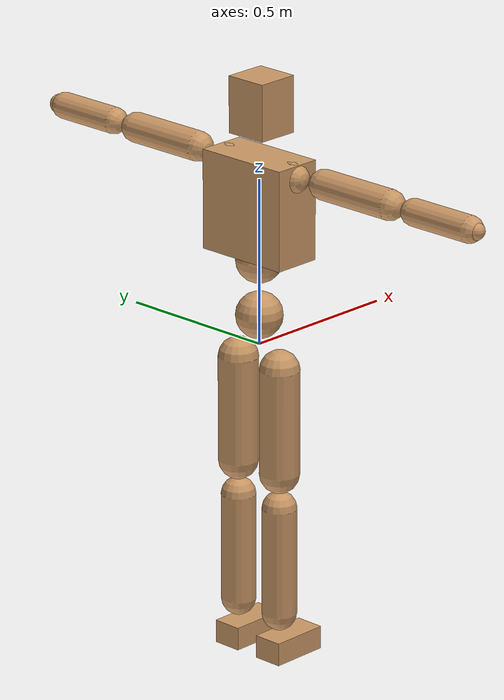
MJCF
<mujoco model="kw5">
  <compiler angle="degree" inertiafromgeom="true"/>

  <option timestep="0.00555"/>
  <default>
    <joint armature="1" damping="1" limited="true"/>
    <geom conaffinity="1" condim="1" contype="1" margin="0.001" rgba="0.8 0.6 .4 1"/>
    <motor ctrllimited="true" ctrlrange="-1.0 1.0"/>

    <default class="body">
      <geom type="capsule" condim="1" friction="1.0 0.05 0.05" solimp=".9 .99 .003" solref=".015 1"/>
      <joint type="hinge" damping="0.1" stiffness="5" armature=".007" limited="true" solimplimit="0 .99 .01" actuatorfrcrange="-3.4028235e38 3.4028235e38"/>
      <!-- actuatorfrcrange is for IsaacSim, otherwise, maxForce become 0-->
      <site size=".04" group="3"/>
      <default class="force-torque">
        <site type="box" size=".01 .01 .02" rgba="1 0 0 1" />
      </default>
      <default class="touch">
        <site type="capsule" rgba="0 0 1 .3"/>
      </default>
    </default>

  </default>

  <worldbody>

    <body name="Hips" pos=" 0 0 0 " childclass="body">
      <freejoint name="Hips"/>
      <site name="Hips" class="force-torque"/>
      <geom name="pelvis" type="sphere" pos="0 0 0.09" size="0.07" density="2226"/>
      <geom name="upper_waist" type="sphere" pos="0 0 0.26" size="0.07" density="2226"/>
      <site name="pelvis" class="touch" type="sphere" pos="0 0 0.9" size="0.071"/>
      <site name="upper_waist" class="touch" type="sphere" pos="0 0 0.26" size="0.071"/>

      <body name="LeftHip" pos=" -0.001963 0.082442 0.002344 ">
        <site name="LeftHip" class="force-torque"/>
        <joint name="LeftHip_x" axis=" 1 0 0 " pos="0 0 0" range="-15 60" stiffness="300" damping="30" type="hinge" armature="0.02"/>
        <joint name="LeftHip_y" axis=" 0 1 0 " pos="0 0 0" range="-140 60" stiffness="300" damping="30" type="hinge" armature="0.02"/>
        <joint name="LeftHip_z" axis=" 0 0 1 " pos="0 0 0" range="-35 60" stiffness="300" damping="30" type="hinge" armature="0.02"/>
        <geom name="left_thigh" fromto="0 0 -0.06 0 0 -0.38" size=".06" density="1269"/>
        <site name="left_thigh" class="touch" pos="0 0 -0.22" size="0.061 0.301" zaxis="0 0 -1"/>

        <body name="LeftKnee" pos=" 0 0 -0.444242 ">
          <site name="LeftKnee" class="force-torque" pos="0 0 .02"/>
          <joint name="LeftKnee" axis=" 0 1 0 " pos="0 0 0" range="0 160" stiffness="300" damping="30" type="hinge" armature="0.02"/>
          <geom name="left_shin" fromto="0 0 -0.045 0 0 -0.375" size=".052" density="1014"/>
          <site name="left_shin" class="touch" pos="0 0 -0.21" size="0.053 0.165" zaxis="0 0 -1"/>
          <body name="LeftAnkle" pos=" 0 0 -0.431735 ">
            <site name="LeftAnkle" class="force-torque"/>
            <joint name="LeftAnkle_x" axis=" 1 0 0 " pos="0 0 0" range="-30 30" stiffness="200" damping="20" type="hinge" armature="0.01"/>
            <joint name="LeftAnkle_y" axis=" 0 1 0 " pos="0 0 0" range="-55 55" stiffness="200" damping="20" type="hinge" armature="0.01"/>
            <joint name="LeftAnkle_z" axis=" 0 0 1 " pos="0 0 0" range="-40 40" stiffness="200" damping="20" type="hinge" armature="0.01"/>
            <geom name="left_foot" type="box" pos="0.04 0.0 -0.05" size="0.090 0.045 0.035" density="1141"/>
            <site name="left_foot" class="touch" type="box" pos="0.04 0.0 -0.05" size="0.091 0.046 0.036"/>

            <body name="LeftToe" pos=" 0.125 0 -0.0835 ">
              <geom name="left_toe" type="sphere" size=".0010"/>
              <site name="left_toe" class="touch" type="sphere" size=".0011"/>
            </body>
          </body>
        </body>
      </body>

      <body name="RightHip" pos=" -0.001963 -0.082442 0.002344 ">
        <site name="RightHip" class="force-torque"/>
        <joint name="RightHip_x" axis=" 1 0 0 " pos="0 0 0" range="-60 15" stiffness="300" damping="30" type="hinge" armature="0.02"/>
        <joint name="RightHip_y" axis=" 0 1 0 " pos="0 0 0" range="-140 60" stiffness="300" damping="30" type="hinge" armature="0.02"/>
        <joint name="RightHip_z" axis=" 0 0 1 " pos="0 0 0" range="-60 35" stiffness="300" damping="30" type="hinge" armature="0.02"/>
        <geom name="right_thigh" fromto="0 0 -0.06 0 0 -0.38" size="0.06" density="1269"/>
        <site name="right_thigh" class="touch" pos="0 0 -0.22" size="0.061 0.301" zaxis="0 0 -1"/>

        <body name="RightKnee" pos=" 0 0 -0.444242 ">
          <site name="RightKnee" class="force-torque" pos="0 0 0"/>
          <joint name="RightKnee" axis=" 0 1 0 " pos="0 0 0" range="0 160" stiffness="300" damping="30" type="hinge" armature="0.02"/>
          <geom name="right_shin" fromto="0 0 -0.045 0 0 -0.375" size=".052" density="1014"/>
          <site name="right_shin" class="touch" pos="0 0 -0.21" size="0.053 0.165" zaxis="0 0 -1"/>

          <body name="RightAnkle" pos=" 0 0 -0.431735 ">
            <site name="RightAnkle" class="force-torque"/>
            <joint name="RightAnkle_x" axis=" 1 0 0 " pos="0 0 0" range="-30 30" stiffness="200" damping="20" type="hinge" armature="0.01"/>
            <joint name="RightAnkle_y" axis=" 0 1 0 " pos="0 0 0" range="-55 55" stiffness="200" damping="20" type="hinge" armature="0.01"/>
            <joint name="RightAnkle_z" axis=" 0 0 1 " pos="0 0 0" range="-40 40" stiffness="200" damping="20" type="hinge" armature="0.01"/>
            <geom name="right_foot" type="box" pos="0.04 0.0 -0.05" size="0.090 0.045 0.035" density="1141"/>
            <site name="right_foot" class="touch" type="box" pos="0.04 0.0 -0.05" size="0.091 0.046 0.036"/>

            <body name="RightToe" pos=" 0.125 0 -0.0835 ">
              <geom name="right_toe" type="sphere" size=".0010"/>
              <site name="right_toe" class="touch" type="sphere" size=".0011"/>
            </body>
          </body>
        </body>
      </body>

      <body name="Chest" pos=" -0.005414 -0.003774 0.297994 ">
        <light name="top" pos="0 0 2" mode="trackcom"/>
        <camera name="back" pos="-3 0 1" xyaxes="0 -1 0 1 0 2" mode="trackcom"/>
        <camera name="side" pos="0 -3 1" xyaxes="1 0 0 0 1 2" mode="trackcom"/>
        <joint name="Chest_x" axis=" 1 0 0 " pos="0 0 0" range="-60 60" stiffness="600" damping="60" type="hinge" armature="0.02"/>
        <joint name="Chest_y" axis=" 0 1 0 " pos="0 0 0" range="-60 90" stiffness="600" damping="60" type="hinge" armature="0.02"/>
        <joint name="Chest_z" axis=" 0 0 1 " pos="0 0 0" range="-50 50" stiffness="600" damping="60" type="hinge" armature="0.02"/>
        <geom name="torso" type="box" size=" 0.075 0.15 0.15 " pos=" 0 0 0.13 " density="1794"/>
        <site name="torso" class="touch" type="box" pos="0 0 0.13" size="0.076 0.151 0.151 "/>

        <geom name="right_clavicle" fromto="0.007191 -0.0457775 0.2287955 0.007191 -0.13 0.2376182" size=".045" density="1100"/>
        <geom name="left_clavicle" fromto="0.007191 0.0457775 0.2287955 0.007191 0.13 0.2376182" size=".045" density="1100"/>

        <body name="LeftShoulder" pos=" 0.007191 0.198 0.245686 ">
          <joint name="LeftShoulder_x" axis=" 1 0 0 " pos="0 0 0" range="-160 90" stiffness="200" damping="20" type="hinge" armature="0.02"/>
          <joint name="LeftShoulder_y" axis=" 0 1 0 " pos="0 0 0" range="-90 90" stiffness="200" damping="20" type="hinge" armature="0.02"/>
          <joint name="LeftShoulder_z" axis=" 0 0 1 " pos="0 0 0" range="-160 70" stiffness="200" damping="20" type="hinge" armature="0.02"/>
          <geom name="left_upper_arm" fromto="0 0.05 0 0 0.30 0" size="0.045" density="982"/>
          <site name="left_upper_arm" class="touch" pos="0 0.15 0" size="0.046 0.1" zaxis="0 0 1"/>
          <body name="LeftElbow" pos=" 0 0.338862 0 ">
            <joint name="LeftElbow" axis=" 0 0 1 " pos="0 0 0" range="-160 0" stiffness="150" damping="15" type="hinge" armature="0.01"/>
            <geom name="left_lower_arm" fromto="0 0.0525 0 0 0.2575 0" size="0.04" density="1056"/>
            <site name="left_lower_arm" class="touch" pos="0 0.155 0" size="0.041 0.0685" zaxis="0 0 1"/>

            <body name="LeftWrist" pos=" 0 0.280143 0 ">
              <geom name="left_wrist" type="sphere" size=".030" density="1865"/>
              <site name="left_wrist" class="touch" type="sphere" size=".027"/>
            </body>
          </body>
        </body>

        <body name="RightShoulder" pos=" 0.007191 -0.198 0.245686 ">
          <joint name="RightShoulder_x" axis=" 1 0 0 " pos="0 0 0" range="-90 160" stiffness="200" damping="20" type="hinge" armature="0.02"/>
          <joint name="RightShoulder_y" axis=" 0 1 0 " pos="0 0 0" range="-90 90" stiffness="200" damping="20" type="hinge" armature="0.02"/>
          <joint name="RightShoulder_z" axis=" 0 0 1 " pos="0 0 0" range="-70 160" stiffness="200" damping="20" type="hinge" armature="0.02"/>
          <geom name="right_upper_arm" fromto="0 -0.05 0 0 -0.30 0" size=".045" density="982"/>
          <site name="right_upper_arm" class="touch" pos="0 -0.175 0" size="0.046 0.1" zaxis="0 0 1"/>
          <body name="RightElbow" pos=" 0 -0.338862 0 ">
            <joint name="RightElbow" axis=" 0 0 1 " pos="0 0 0" range="0 160" stiffness="150" damping="15" type="hinge" armature="0.01"/>
            <geom name="right_lower_arm" fromto="0 -0.0525 0 0 -0.2575 0" size="0.04" density="1056"/>
            <site name="right_lower_arm" class="touch" pos="0 -0.155 0" size="0.041 0.0685" zaxis="0 0 1"/>

            <body name="RightWrist" pos=" 0 -0.280143 0 ">
              <geom name="right_wrist" type="sphere" size=".026" density="1865"/>
              <site name="right_wrist" class="touch" type="sphere" size=".027"/>
            </body>
          </body>
        </body>

        <body name="Neck" pos=" 0.010085 0.00045 0.327652 ">
          <joint name="Neck_x" axis=" 1 0 0 " pos="0 0 0" range="-50 50" stiffness="50" damping="5" type="hinge" armature="0.01"/>
          <joint name="Neck_y" axis=" 0 1 0 " pos="0 0 0" range="-40 60" stiffness="50" damping="5" type="hinge" armature="0.01"/>
          <joint name="Neck_z" axis=" 0 0 1 " pos="0 0 0" range="-45 45" stiffness="50" damping="5" type="hinge" armature="0.01"/>
          <geom name="head" type="box" size=" 0.065 0.065 0.085 " pos=" 0 0 0.1 " density="1081"/>
          <site name="head" class="touch" pos="0 0 0.1" type="box" size=" 0.067 0.067 0.087 "/>
          <camera name="egocentric" pos=".103 0 0.12" xyaxes="0 -1 0 .1 0 1" fovy="80"/>
        </body>
      </body>
    </body>
  </worldbody>

  <actuator>
    <motor name="LeftHip_x" joint="LeftHip_x" gear="135"/>
    <motor name="LeftHip_y" joint="LeftHip_y" gear="135"/>
    <motor name="LeftHip_z" joint="LeftHip_z" gear="135"/>
    <motor name="LeftKnee" joint="LeftKnee" gear="100"/>
    <motor name="LeftAnkle_x" joint="LeftAnkle_x" gear="50.0"/>
    <motor name="LeftAnkle_y" joint="LeftAnkle_y" gear="50.0"/>
    <motor name="LeftAnkle_z" joint="LeftAnkle_z" gear="50.0"/>
    <motor name="RightHip_x" joint="RightHip_x" gear="135"/>
    <motor name="RightHip_y" joint="RightHip_y" gear="135"/>
    <motor name="RightHip_z" joint="RightHip_z" gear="135"/>
    <motor name="RightKnee" joint="RightKnee" gear="100"/>
    <motor name="RightAnkle_x" joint="RightAnkle_x" gear="50.0"/>
    <motor name="RightAnkle_y" joint="RightAnkle_y" gear="50.0"/>
    <motor name="RightAnkle_z" joint="RightAnkle_z" gear="50.0"/>
    <motor name="Chest_x" joint="Chest_x" gear="135"/>
    <motor name="Chest_y" joint="Chest_y" gear="135"/>
    <motor name="Chest_z" joint="Chest_z" gear="135"/>
    <motor name="LeftShoulder_x" joint="LeftShoulder_x" gear="70"/>
    <motor name="LeftShoulder_y" joint="LeftShoulder_y" gear="70"/>
    <motor name="LeftShoulder_z" joint="LeftShoulder_z" gear="70"/>
    <motor name="LeftElbow" joint="LeftElbow" gear="60"/>
    <motor name="RightShoulder_x" joint="RightShoulder_x" gear="70"/>
    <motor name="RightShoulder_y" joint="RightShoulder_y" gear="70"/>
    <motor name="RightShoulder_z" joint="RightShoulder_z" gear="70"/>
    <motor name="RightElbow" joint="RightElbow" gear="60"/>
    <motor name="Neck_x" joint="Neck_x" gear="20"/>
    <motor name="Neck_y" joint="Neck_y" gear="20"/>
    <motor name="Neck_z" joint="Neck_z" gear="20"/>
  </actuator>

  <sensor>
    <subtreelinvel name="pelvis_subtreelinvel" body="Hips"/>
    <accelerometer name="root_accel" site="Hips"/>
    <velocimeter name="root_vel" site="Hips"/>
    <gyro name="root_gyro" site="Hips"/>

    <force name="LeftAnkle_force" site="LeftAnkle"/>
    <force name="RightAnkle_force" site="RightAnkle"/>
    <force name="LeftKnee_force" site="LeftKnee"/>
    <force name="RightKnee_force" site="RightKnee"/>
    <force name="LeftHip_force" site="LeftHip"/>
    <force name="RightHip_force" site="RightHip"/>

    <torque name="LeftAnkle_torque" site="LeftAnkle"/>
    <torque name="RightAnkle_torque" site="RightAnkle"/>
    <torque name="LeftKnee_torque" site="LeftKnee"/>
    <torque name="RightKnee_torque" site="RightKnee"/>
    <torque name="LeftHip_torque" site="LeftHip"/>
    <torque name="RightHip_torque" site="RightHip"/>

    <touch name="pelvis_touch" site="pelvis"/>
    <touch name="upper_waist_touch" site="upper_waist"/>
    <touch name="torso_touch" site="torso"/>
    <touch name="head_touch" site="head"/>
    <touch name="right_upper_arm_touch" site="right_upper_arm"/>
    <touch name="right_lower_arm_touch" site="right_lower_arm"/>
    <touch name="left_upper_arm_touch" site="left_upper_arm"/>
    <touch name="left_lower_arm_touch" site="left_lower_arm"/>
    <touch name="right_thigh_touch" site="right_thigh"/>
    <touch name="right_shin_touch" site="right_shin"/>
    <touch name="right_foot_touch" site="right_foot"/>
    <touch name="left_thigh_touch" site="left_thigh"/>
    <touch name="left_shin_touch" site="left_shin"/>
    <touch name="left_foot_touch" site="left_foot"/>
  </sensor>

</mujoco>
